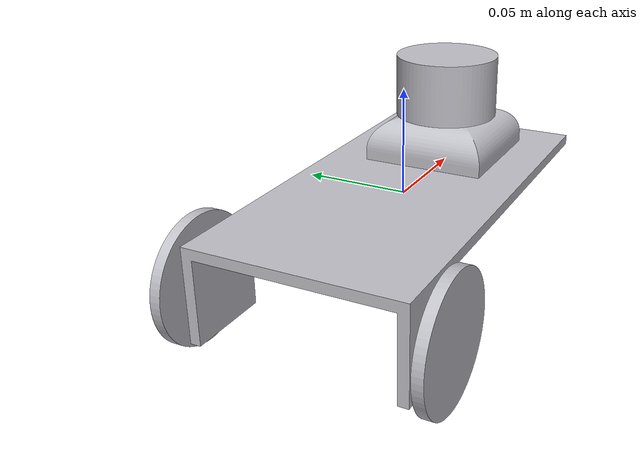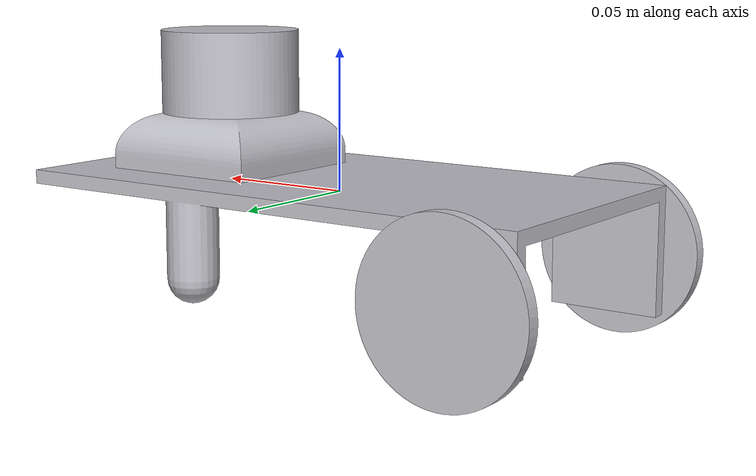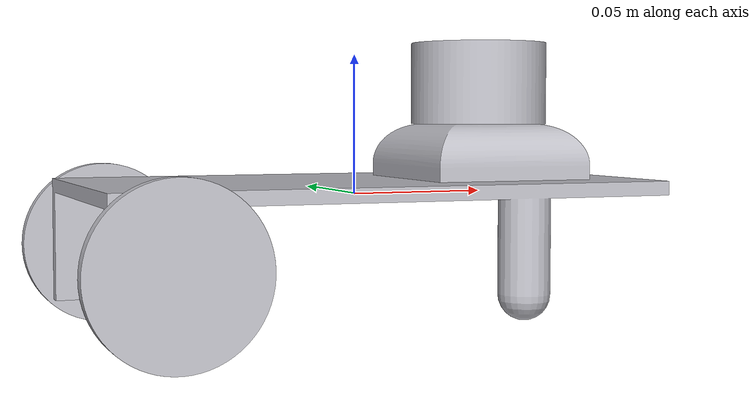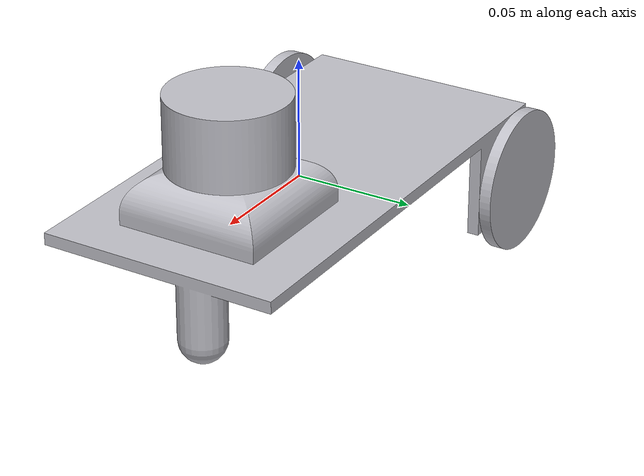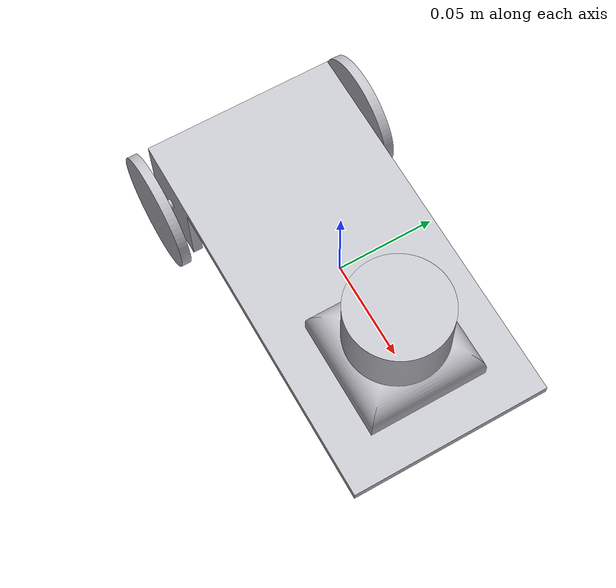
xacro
<?xml version="1.0" ?>
<robot name="TEST" xmlns:xacro="http://www.ros.org/wiki/xacro">

<xacro:include filename="$(find TEST_description)/urdf/materials.xacro" />
<xacro:include filename="$(find TEST_description)/urdf/TEST.trans" />
<xacro:include filename="$(find TEST_description)/urdf/TEST.gazebo" />
<link name="base_link">
  <inertial>
    <origin xyz="0.2059961498032222 1.4786219427642696e-15 -0.0972502917512382" rpy="0 0 0"/>
    <mass value="1.0316915999493312"/>
    <inertia ixx="0.001108" iyy="0.004172" izz="0.004984" ixy="-0.0" iyz="0.0" ixz="-8e-06"/>
  </inertial>
  <visual>
    <origin xyz="0 0 0" rpy="0 0 0"/>
    <geometry>
      <mesh filename="package://TEST_description/meshes/base_link.stl" scale="0.001 0.001 0.001"/>
    </geometry>
    <material name="silver"/>
  </visual>
  <collision>
    <origin xyz="0 0 0" rpy="0 0 0"/>
    <geometry>
      <mesh filename="package://TEST_description/meshes/base_link.stl" scale="0.001 0.001 0.001"/>
    </geometry>
  </collision>
</link>

<link name="right_wheel_1">
  <inertial>
    <origin xyz="3.91125602378084e-07 -0.0025002831323006555 -9.244558987764329e-08" rpy="0 0 0"/>
    <mass value="0.11097676048805946"/>
    <inertia ixx="2.5e-05" iyy="5e-05" izz="2.5e-05" ixy="0.0" iyz="0.0" ixz="-0.0"/>
  </inertial>
  <visual>
    <origin xyz="-0.128046 0.055284 0.114089" rpy="0 0 0"/>
    <geometry>
      <mesh filename="package://TEST_description/meshes/right_wheel_1.stl" scale="0.001 0.001 0.001"/>
    </geometry>
    <material name="silver"/>
  </visual>
  <collision>
    <origin xyz="-0.128046 0.055284 0.114089" rpy="0 0 0"/>
    <geometry>
      <mesh filename="package://TEST_description/meshes/right_wheel_1.stl" scale="0.001 0.001 0.001"/>
    </geometry>
  </collision>
</link>

<link name="left_wheel_1">
  <inertial>
    <origin xyz="3.9112560246135075e-07 0.002500283132303917 -9.244558972498762e-08" rpy="0 0 0"/>
    <mass value="0.11097676048805946"/>
    <inertia ixx="2.5e-05" iyy="5e-05" izz="2.5e-05" ixy="0.0" iyz="0.0" ixz="-0.0"/>
  </inertial>
  <visual>
    <origin xyz="-0.128046 -0.055284 0.114089" rpy="0 0 0"/>
    <geometry>
      <mesh filename="package://TEST_description/meshes/left_wheel_1.stl" scale="0.001 0.001 0.001"/>
    </geometry>
    <material name="silver"/>
  </visual>
  <collision>
    <origin xyz="-0.128046 -0.055284 0.114089" rpy="0 0 0"/>
    <geometry>
      <mesh filename="package://TEST_description/meshes/left_wheel_1.stl" scale="0.001 0.001 0.001"/>
    </geometry>
  </collision>
</link>

<link name="lidar_1">
  <inertial>
    <origin xyz="3.911256022948173e-07 1.5587531265737197e-15 0.01499990755441117" rpy="0 0 0"/>
    <mass value="0.4624031687002476"/>
    <inertia ixx="0.000107" iyy="0.000107" izz="0.000145" ixy="0.0" iyz="0.0" ixz="-0.0"/>
  </inertial>
  <visual>
    <origin xyz="-0.258046 -0.0 0.069089" rpy="0 0 0"/>
    <geometry>
      <mesh filename="package://TEST_description/meshes/lidar_1.stl" scale="0.001 0.001 0.001"/>
    </geometry>
    <material name="silver"/>
  </visual>
  <collision>
    <origin xyz="-0.258046 -0.0 0.069089" rpy="0 0 0"/>
    <geometry>
      <mesh filename="package://TEST_description/meshes/lidar_1.stl" scale="0.001 0.001 0.001"/>
    </geometry>
  </collision>
</link>

<link name="mount_1">
  <inertial>
    <origin xyz="-0.2582116088743976 1.5376588891058418e-15 0.10300872051164842" rpy="0 0 0"/>
    <mass value="0.48439014073208936"/>
    <inertia ixx="0.000144" iyy="0.000144" izz="0.00026" ixy="0.0" iyz="0.0" ixz="-0.0"/>
  </inertial>
  <visual>
    <origin xyz="-0.516258 -0.0 0.183178" rpy="0 0 0"/>
    <geometry>
      <mesh filename="package://TEST_description/meshes/mount_1.stl" scale="0.001 0.001 0.001"/>
    </geometry>
    <material name="silver"/>
  </visual>
  <collision>
    <origin xyz="-0.516258 -0.0 0.183178" rpy="0 0 0"/>
    <geometry>
      <mesh filename="package://TEST_description/meshes/mount_1.stl" scale="0.001 0.001 0.001"/>
    </geometry>
  </collision>
</link>

<joint name="Rev1" type="continuous">
  <origin xyz="0.128046 -0.055284 -0.114089" rpy="0 0 0"/>
  <parent link="base_link"/>
  <child link="right_wheel_1"/>
  <axis xyz="0.0 1.0 0.0"/>
</joint>

<joint name="Rev2" type="continuous">
  <origin xyz="0.128046 0.055284 -0.114089" rpy="0 0 0"/>
  <parent link="base_link"/>
  <child link="left_wheel_1"/>
  <axis xyz="0.0 1.0 0.0"/>
</joint>

<joint name="Rev3" type="continuous">
  <origin xyz="-0.258212 0.0 0.114089" rpy="0 0 0"/>
  <parent link="mount_1"/>
  <child link="lidar_1"/>
  <axis xyz="0.0 0.0 1.0"/>
</joint>

<joint name="Rigid4" type="fixed">
  <origin xyz="0.516258 0.0 -0.183178" rpy="0 0 0"/>
  <parent link="base_link"/>
  <child link="mount_1"/>
</joint>

</robot>

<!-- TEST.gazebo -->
<robot name="TEST" xmlns:xacro="http://www.ros.org/wiki/xacro" >

<xacro:property name="body_color" value="Gazebo/Silver" />

<gazebo>
  <plugin name="control" filename="libgazebo_ros_control.so"/>
</gazebo>
<gazebo reference="base_link">
  <material>${body_color}</material>
  <mu1>3500</mu1>
  <mu2>3500</mu2>
  <selfCollide>true</selfCollide>
  <gravity>true</gravity>
</gazebo>

<gazebo reference="right_wheel_1">
  <material>${body_color}</material>
  <mu1>3500</mu1>
  <mu2>3500</mu2>
  <selfCollide>true</selfCollide>
</gazebo>

<gazebo reference="left_wheel_1">
  <material>${body_color}</material>
  <mu1>3500</mu1>
  <mu2>3500</mu2>
  <selfCollide>true</selfCollide>
</gazebo>

<gazebo reference="lidar_1">
  <material>${body_color}</material>
  <mu1>0.2</mu1>
  <mu2>0.2</mu2>
  <selfCollide>true</selfCollide>
</gazebo>

<gazebo reference="mount_1">
  <material>${body_color}</material>
  <mu1>0.2</mu1>
  <mu2>0.2</mu2>
  <selfCollide>true</selfCollide>
</gazebo>
<gazebo>
  <plugin name="differential_drive_controller" filename="libgazebo_ros_diff_drive.so">

    <!-- Plugin update rate in Hz -->
    <updateRate>${1000}</updateRate>

    <!-- Name of left joint, defaults to `left_joint` -->
    <leftJoint>Rev1</leftJoint>

    <!-- Name of right joint, defaults to `right_joint` -->
    <rightJoint>Rev2</rightJoint>

    <!-- The distance from the center of one wheel to the other, in meters, defaults to 0.34 m -->
    <wheelSeparation>0.5380</wheelSeparation>

    <!-- Diameter of the wheels, in meters, defaults to 0.15 m -->
    <wheelDiameter>0.2410</wheelDiameter>

    <!-- Wheel acceleration, in rad/s^2, defaults to 0.0 rad/s^2 -->
    <wheelAcceleration>1.0</wheelAcceleration>

    <!-- Maximum torque which the wheels can produce, in Nm, defaults to 5 Nm -->
    <wheelTorque>20</wheelTorque>

    <!-- Topic to receive geometry_msgs/Twist message commands, defaults to `cmd_vel` -->
    <commandTopic>cmd_vel</commandTopic>

    <!-- Topic to publish nav_msgs/Odometry messages, defaults to `odom` -->
    <odometryTopic>odom</odometryTopic>

    <!-- Odometry frame, defaults to `odom` -->
    <odometryFrame>odom</odometryFrame>

    <!-- Robot frame to calculate odometry from, defaults to `base_footprint` -->
    <robotBaseFrame>base_link</robotBaseFrame>

    <!-- Odometry source, 0 for ENCODER, 1 for WORLD, defaults to WORLD -->
    <odometrySource>1</odometrySource>

    <!-- Set to true to publish transforms for the wheel links, defaults to false -->
    <publishWheelTF>true</publishWheelTF>

    <!-- Set to true to publish transforms for the odometry, defaults to true -->
    <publishOdom>true</publishOdom>

    <!-- Set to true to publish sensor_msgs/JointState on /joint_states for the wheel joints, defaults to false -->
    <publishWheelJointState>true</publishWheelJointState>

    <!-- Set to true to swap right and left wheels, defaults to true -->
    <legacyMode>false</legacyMode>
  </plugin>
</gazebo>

</robot>
